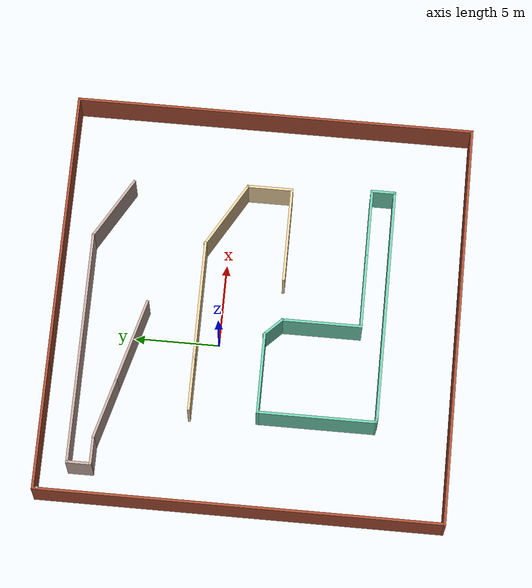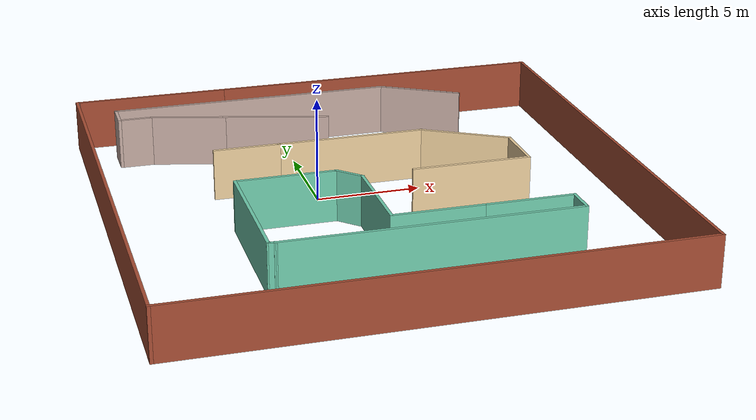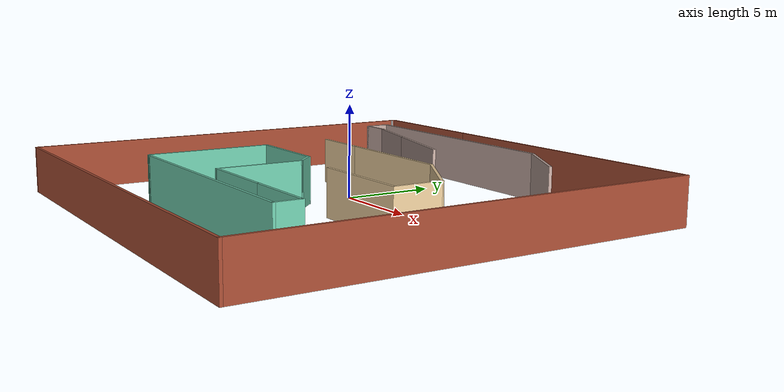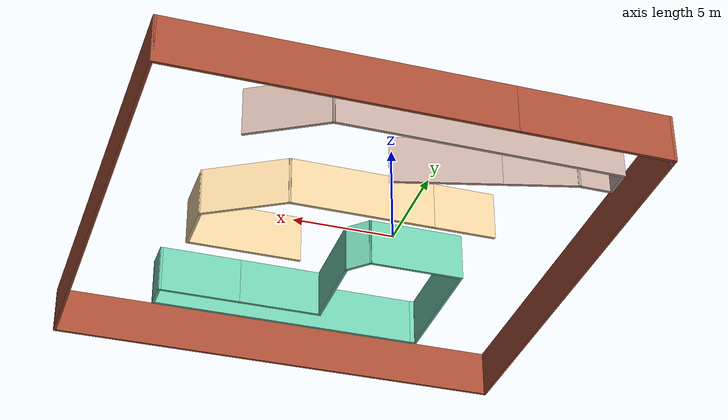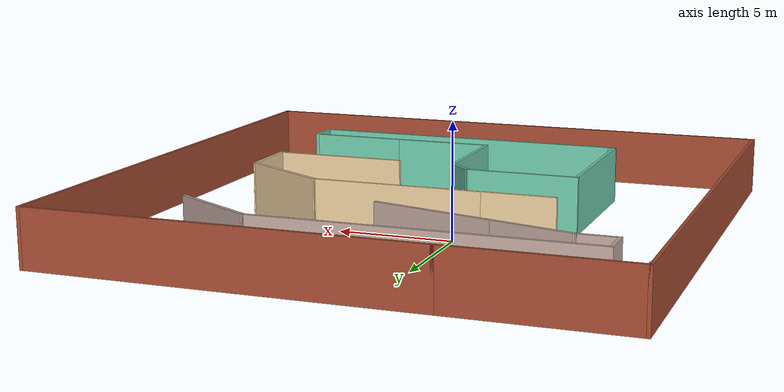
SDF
<?xml version='1.0'?>
<sdf version='1.6'>
  <model name='mst_world_wall'>
    <pose frame=''>1.91645 -2.05889 0 0 -0 0</pose>
    <link name='Wall_15'>
      <collision name='Wall_15_Collision'>
        <geometry>
          <box>
            <size>16.75 0.15 2.5</size>
          </box>
        </geometry>
        <pose frame=''>0 0 1.25 0 -0 0</pose>
      </collision>
      <visual name='Wall_15_Visual'>
        <pose frame=''>0 0 1.25 0 -0 0</pose>
        <geometry>
          <box>
            <size>16.75 0.15 2.5</size>
          </box>
        </geometry>
        <material>
          <script>
            <uri>file://media/materials/scripts/gazebo.material</uri>
            <name>Gazebo/Bricks</name>
          </script>
          <ambient>0.760784 0.662745 0.627451 1</ambient>
        </material>
        <meta>
          <layer>0</layer>
        </meta>
      </visual>
      <pose frame=''>3.75 11.8 0 0 -0 0</pose>
    </link>
    <link name='Wall_16'>
      <collision name='Wall_16_Collision'>
        <geometry>
          <box>
            <size>23.75 0.15 2.5</size>
          </box>
        </geometry>
        <pose frame=''>0 0 1.25 0 -0 0</pose>
      </collision>
      <visual name='Wall_16_Visual'>
        <pose frame=''>0 0 1.25 0 -0 0</pose>
        <geometry>
          <box>
            <size>23.75 0.15 2.5</size>
          </box>
        </geometry>
        <material>
          <script>
            <uri>file://media/materials/scripts/gazebo.material</uri>
            <name>Gazebo/Bricks</name>
          </script>
          <ambient>0.435294 0.796078 0.67451 1</ambient>
        </material>
        <meta>
          <layer>0</layer>
        </meta>
      </visual>
      <pose frame=''>12.05 -0 0 0 -0 -1.5708</pose>
    </link>
    <link name='Wall_17'>
      <collision name='Wall_17_Collision'>
        <geometry>
          <box>
            <size>24.25 0.15 2.5</size>
          </box>
        </geometry>
        <pose frame=''>0 0 1.25 0 -0 0</pose>
      </collision>
      <visual name='Wall_17_Visual'>
        <pose frame=''>0 0 1.25 0 -0 0</pose>
        <geometry>
          <box>
            <size>24.25 0.15 2.5</size>
          </box>
        </geometry>
        <material>
          <script>
            <uri>file://media/materials/scripts/gazebo.material</uri>
            <name>Gazebo/Bricks</name>
          </script>
          <ambient>0.435294 0.796078 0.67451 1</ambient>
        </material>
        <meta>
          <layer>0</layer>
        </meta>
      </visual>
      <pose frame=''>0 -11.8 0 0 -0 3.14159</pose>
    </link>
    <link name='Wall_21'>
      <collision name='Wall_21_Collision'>
        <geometry>
          <box>
            <size>0.15 0.15 2.5</size>
          </box>
        </geometry>
        <pose frame=''>0 0 1.25 0 -0 0</pose>
      </collision>
      <visual name='Wall_21_Visual'>
        <pose frame=''>0 0 1.25 0 -0 0</pose>
        <geometry>
          <box>
            <size>0.15 0.15 2.5</size>
          </box>
        </geometry>
        <material>
          <script>
            <uri>file://media/materials/scripts/gazebo.material</uri>
            <name>Gazebo/Grey</name>
          </script>
          <ambient>1 1 1 1</ambient>
        </material>
        <meta>
          <layer>0</layer>
        </meta>
      </visual>
      <pose frame=''>-12.0155 11.55 0 0 -0 0</pose>
    </link>
    <link name='Wall_22'>
      <collision name='Wall_22_Collision'>
        <geometry>
          <box>
            <size>0.15 0.15 2.5</size>
          </box>
        </geometry>
        <pose frame=''>0 0 1.25 0 -0 0</pose>
      </collision>
      <visual name='Wall_22_Visual'>
        <pose frame=''>0 0 1.25 0 -0 0</pose>
        <geometry>
          <box>
            <size>0.15 0.15 2.5</size>
          </box>
        </geometry>
        <material>
          <script>
            <uri>file://media/materials/scripts/gazebo.material</uri>
            <name>Gazebo/Bricks</name>
          </script>
          <ambient>1 1 1 1</ambient>
        </material>
        <meta>
          <layer>0</layer>
        </meta>
      </visual>
      <pose frame=''>-12.0155 11.55 0 0 -0 0</pose>
    </link>
    <link name='Wall_28'>
      <collision name='Wall_28_Collision'>
        <geometry>
          <box>
            <size>23.75 0.15 2.5</size>
          </box>
        </geometry>
        <pose frame=''>0 0 1.25 0 -0 0</pose>
      </collision>
      <visual name='Wall_28_Visual'>
        <pose frame=''>0 0 1.25 0 -0 0</pose>
        <geometry>
          <box>
            <size>23.75 0.15 2.5</size>
          </box>
        </geometry>
        <material>
          <script>
            <uri>file://media/materials/scripts/gazebo.material</uri>
            <name>Gazebo/Bricks</name>
          </script>
          <ambient>1 1 1 1</ambient>
        </material>
        <meta>
          <layer>0</layer>
        </meta>
      </visual>
      <pose frame=''>-12.05 -0 0 0 -0 1.5708</pose>
    </link>
    <link name='Wall_29'>
      <collision name='Wall_29_Collision'>
        <geometry>
          <box>
            <size>7.65 0.15 2.5</size>
          </box>
        </geometry>
        <pose frame=''>0 0 1.25 0 -0 0</pose>
      </collision>
      <visual name='Wall_29_Visual'>
        <pose frame=''>0 0 1.25 0 -0 0</pose>
        <geometry>
          <box>
            <size>7.65 0.15 2.5</size>
          </box>
        </geometry>
        <material>
          <script>
            <uri>file://media/materials/scripts/gazebo.material</uri>
            <name>Gazebo/Bricks</name>
          </script>
          <ambient>1 1 1 1</ambient>
        </material>
        <meta>
          <layer>0</layer>
        </meta>
      </visual>
      <pose frame=''>-8.3 11.8 0 0 -0 0</pose>
    </link>
    <link name='Wall_31'>
      <collision name='Wall_31_Collision'>
        <geometry>
          <box>
            <size>4.89506 0.15 2.5</size>
          </box>
        </geometry>
        <pose frame=''>0 0 1.25 0 -0 0</pose>
      </collision>
      <visual name='Wall_31_Visual'>
        <pose frame=''>0 0 1.25 0 -0 0</pose>
        <geometry>
          <box>
            <size>4.89506 0.15 2.5</size>
          </box>
        </geometry>
        <material>
          <script>
            <uri>file://media/materials/scripts/gazebo.material</uri>
            <name>Gazebo/Grey</name>
          </script>
          <ambient>0.435294 0.796078 0.67451 1</ambient>
        </material>
        <meta>
          <layer>0</layer>
        </meta>
      </visual>
      <pose frame=''>-4.04016 -0.586586 0 0 -0 3.14159</pose>
    </link>
    <link name='Wall_34'>
      <collision name='Wall_34_Collision'>
        <geometry>
          <box>
            <size>1.5 0.15 2.5</size>
          </box>
        </geometry>
        <pose frame=''>0 0 1.25 0 -0 0</pose>
      </collision>
      <visual name='Wall_34_Visual'>
        <pose frame=''>0 0 1.25 0 -0 0</pose>
        <geometry>
          <box>
            <size>1.5 0.15 2.5</size>
          </box>
        </geometry>
        <material>
          <script>
            <uri>file://media/materials/scripts/gazebo.material</uri>
            <name>Gazebo/Grey</name>
          </script>
          <ambient>0.435294 0.796078 0.67451 1</ambient>
        </material>
        <meta>
          <layer>0</layer>
        </meta>
      </visual>
      <pose frame=''>-1.19033 -1.06388 0 0 -0 -0.785398</pose>
    </link>
    <link name='Wall_35'>
      <collision name='Wall_35_Collision'>
        <geometry>
          <box>
            <size>4.75 0.15 2.5</size>
          </box>
        </geometry>
        <pose frame=''>0 0 1.25 0 -0 0</pose>
      </collision>
      <visual name='Wall_35_Visual'>
        <pose frame=''>0 0 1.25 0 -0 0</pose>
        <geometry>
          <box>
            <size>4.75 0.15 2.5</size>
          </box>
        </geometry>
        <material>
          <script>
            <uri>file://media/materials/scripts/gazebo.material</uri>
            <name>Gazebo/Grey</name>
          </script>
          <ambient>0.435294 0.796078 0.67451 1</ambient>
        </material>
        <meta>
          <layer>0</layer>
        </meta>
      </visual>
      <pose frame=''>-0.713038 -3.84118 0 0 -0 -1.5708</pose>
    </link>
    <link name='Wall_36'>
      <collision name='Wall_36_Collision'>
        <geometry>
          <box>
            <size>4.5 0.15 2.5</size>
          </box>
        </geometry>
        <pose frame=''>0 0 1.25 0 -0 0</pose>
      </collision>
      <visual name='Wall_36_Visual'>
        <pose frame=''>0 0 1.25 0 -0 0</pose>
        <geometry>
          <box>
            <size>4.5 0.15 2.5</size>
          </box>
        </geometry>
        <material>
          <script>
            <uri>file://media/materials/scripts/gazebo.material</uri>
            <name>Gazebo/Grey</name>
          </script>
          <ambient>0.435294 0.796078 0.67451 1</ambient>
        </material>
        <meta>
          <layer>0</layer>
        </meta>
      </visual>
      <pose frame=''>1.46196 -6.14118 0 0 -0 0</pose>
    </link>
    <link name='Wall_37'>
      <collision name='Wall_37_Collision'>
        <geometry>
          <box>
            <size>4.25 0.15 2.5</size>
          </box>
        </geometry>
        <pose frame=''>0 0 1.25 0 -0 0</pose>
      </collision>
      <visual name='Wall_37_Visual'>
        <pose frame=''>0 0 1.25 0 -0 0</pose>
        <geometry>
          <box>
            <size>4.25 0.15 2.5</size>
          </box>
        </geometry>
        <material>
          <script>
            <uri>file://media/materials/scripts/gazebo.material</uri>
            <name>Gazebo/Grey</name>
          </script>
          <ambient>0.435294 0.796078 0.67451 1</ambient>
        </material>
        <meta>
          <layer>0</layer>
        </meta>
      </visual>
      <pose frame=''>5.68696 -6.14118 0 0 -0 0</pose>
    </link>
    <link name='Wall_40'>
      <collision name='Wall_40_Collision'>
        <geometry>
          <box>
            <size>5.75 0.15 2.5</size>
          </box>
        </geometry>
        <pose frame=''>0 0 1.25 0 -0 0</pose>
      </collision>
      <visual name='Wall_40_Visual'>
        <pose frame=''>0 0 1.25 0 -0 0</pose>
        <geometry>
          <box>
            <size>5.75 0.15 2.5</size>
          </box>
        </geometry>
        <material>
          <script>
            <uri>file://media/materials/scripts/gazebo.material</uri>
            <name>Gazebo/Grey</name>
          </script>
          <ambient>0.921569 0.807843 0.615686 1</ambient>
        </material>
        <meta>
          <layer>0</layer>
        </meta>
      </visual>
      <pose frame=''>4.58949 -1.39467 0 0 -0 0</pose>
    </link>
    <link name='Wall_41'>
      <collision name='Wall_41_Collision'>
        <geometry>
          <box>
            <size>2.75 0.15 2.5</size>
          </box>
        </geometry>
        <pose frame=''>0 0 1.25 0 -0 0</pose>
      </collision>
      <visual name='Wall_41_Visual'>
        <pose frame=''>0 0 1.25 0 -0 0</pose>
        <geometry>
          <box>
            <size>2.75 0.15 2.5</size>
          </box>
        </geometry>
        <material>
          <script>
            <uri>file://media/materials/scripts/gazebo.material</uri>
            <name>Gazebo/Grey</name>
          </script>
          <ambient>0.921569 0.807843 0.615686 1</ambient>
        </material>
        <meta>
          <layer>0</layer>
        </meta>
      </visual>
      <pose frame=''>7.38949 -0.094666 0 0 -0 1.5708</pose>
    </link>
    <link name='Wall_43'>
      <collision name='Wall_43_Collision'>
        <geometry>
          <box>
            <size>1.5 0.15 2.5</size>
          </box>
        </geometry>
        <pose frame=''>0 0 1.25 0 -0 0</pose>
      </collision>
      <visual name='Wall_43_Visual'>
        <pose frame=''>0 0 1.25 0 -0 0</pose>
        <geometry>
          <box>
            <size>1.5 0.15 2.5</size>
          </box>
        </geometry>
        <material>
          <script>
            <uri>file://media/materials/scripts/gazebo.material</uri>
            <name>Gazebo/Grey</name>
          </script>
          <ambient>0.435294 0.796078 0.67451 1</ambient>
        </material>
        <meta>
          <layer>0</layer>
        </meta>
      </visual>
      <pose frame=''>7.73696 -6.81618 0 0 -0 -1.5708</pose>
    </link>
    <link name='Wall_44'>
      <collision name='Wall_44_Collision'>
        <geometry>
          <box>
            <size>14 0.15 2.5</size>
          </box>
        </geometry>
        <pose frame=''>0 0 1.25 0 -0 0</pose>
      </collision>
      <visual name='Wall_44_Visual'>
        <pose frame=''>0 0 1.25 0 -0 0</pose>
        <geometry>
          <box>
            <size>14 0.15 2.5</size>
          </box>
        </geometry>
        <material>
          <script>
            <uri>file://media/materials/scripts/gazebo.material</uri>
            <name>Gazebo/Grey</name>
          </script>
          <ambient>0.435294 0.796078 0.67451 1</ambient>
        </material>
        <meta>
          <layer>0</layer>
        </meta>
      </visual>
      <pose frame=''>0.811962 -7.49118 0 0 -0 3.14159</pose>
    </link>
    <link name='Wall_46'>
      <collision name='Wall_46_Collision'>
        <geometry>
          <box>
            <size>7 0.15 2.5</size>
          </box>
        </geometry>
        <pose frame=''>0 0 1.25 0 -0 0</pose>
      </collision>
      <visual name='Wall_46_Visual'>
        <pose frame=''>0 0 1.25 0 -0 0</pose>
        <geometry>
          <box>
            <size>7 0.15 2.5</size>
          </box>
        </geometry>
        <material>
          <script>
            <uri>file://media/materials/scripts/gazebo.material</uri>
            <name>Gazebo/Grey</name>
          </script>
          <ambient>0.435294 0.796078 0.67451 1</ambient>
        </material>
        <meta>
          <layer>0</layer>
        </meta>
      </visual>
      <pose frame=''>-6.41269 -4.01159 0 0 -0 -1.5708</pose>
    </link>
    <link name='Wall_47'>
      <collision name='Wall_47_Collision'>
        <geometry>
          <box>
            <size>0.15 0.15 2.5</size>
          </box>
        </geometry>
        <pose frame=''>0 0 1.25 0 -0 0</pose>
      </collision>
      <visual name='Wall_47_Visual'>
        <pose frame=''>0 0 1.25 0 -0 0</pose>
        <geometry>
          <box>
            <size>0.15 0.15 2.5</size>
          </box>
        </geometry>
        <material>
          <script>
            <uri>file://media/materials/scripts/gazebo.material</uri>
            <name>Gazebo/Grey</name>
          </script>
          <ambient>0.435294 0.796078 0.67451 1</ambient>
        </material>
        <meta>
          <layer>0</layer>
        </meta>
      </visual>
      <pose frame=''>-6.41269 -7.43659 0 0 -0 0</pose>
    </link>
    <link name='Wall_48'>
      <collision name='Wall_48_Collision'>
        <geometry>
          <box>
            <size>0.454586 0.15 2.5</size>
          </box>
        </geometry>
        <pose frame=''>0 0 1.25 0 -0 0</pose>
      </collision>
      <visual name='Wall_48_Visual'>
        <pose frame=''>0 0 1.25 0 -0 0</pose>
        <geometry>
          <box>
            <size>0.454586 0.15 2.5</size>
          </box>
        </geometry>
        <material>
          <script>
            <uri>file://media/materials/scripts/gazebo.material</uri>
            <name>Gazebo/Grey</name>
          </script>
          <ambient>0.435294 0.796078 0.67451 1</ambient>
        </material>
        <meta>
          <layer>0</layer>
        </meta>
      </visual>
      <pose frame=''>-6.26286 -7.46388 0 0 -0 -0.180214</pose>
    </link>
    <link name='Wall_54'>
      <collision name='Wall_54_Collision'>
        <geometry>
          <box>
            <size>4.5 0.15 2.5</size>
          </box>
        </geometry>
        <pose frame=''>0 0 1.25 0 -0 0</pose>
      </collision>
      <visual name='Wall_54_Visual'>
        <pose frame=''>0 0 1.25 0 -0 0</pose>
        <geometry>
          <box>
            <size>4.5 0.15 2.5</size>
          </box>
        </geometry>
        <material>
          <script>
            <uri>file://media/materials/scripts/gazebo.material</uri>
            <name>Gazebo/Grey</name>
          </script>
          <ambient>0.921569 0.807843 0.615686 1</ambient>
        </material>
        <meta>
          <layer>0</layer>
        </meta>
      </visual>
      <pose frame=''>5.50588 2.29283 0 0 -0 2.61799</pose>
    </link>
    <link name='Wall_55'>
      <collision name='Wall_55_Collision'>
        <geometry>
          <box>
            <size>7.25 0.15 2.5</size>
          </box>
        </geometry>
        <pose frame=''>0 0 1.25 0 -0 0</pose>
      </collision>
      <visual name='Wall_55_Visual'>
        <pose frame=''>0 0 1.25 0 -0 0</pose>
        <geometry>
          <box>
            <size>7.25 0.15 2.5</size>
          </box>
        </geometry>
        <material>
          <script>
            <uri>file://media/materials/scripts/gazebo.material</uri>
            <name>Gazebo/Grey</name>
          </script>
          <ambient>0.921569 0.807843 0.615686 1</ambient>
        </material>
        <meta>
          <layer>0</layer>
        </meta>
      </visual>
      <pose frame=''>0.072276 3.38033 0 0 -0 3.14159</pose>
    </link>
    <link name='Wall_59'>
      <collision name='Wall_59_Collision'>
        <geometry>
          <box>
            <size>5.25 0.15 2.5</size>
          </box>
        </geometry>
        <pose frame=''>0 0 1.25 0 -0 0</pose>
      </collision>
      <visual name='Wall_59_Visual'>
        <pose frame=''>0 0 1.25 0 -0 0</pose>
        <geometry>
          <box>
            <size>5.25 0.15 2.5</size>
          </box>
        </geometry>
        <material>
          <script>
            <uri>file://media/materials/scripts/gazebo.material</uri>
            <name>Gazebo/Grey</name>
          </script>
          <ambient>0.760784 0.662745 0.627451 1</ambient>
        </material>
        <meta>
          <layer>0</layer>
        </meta>
      </visual>
      <pose frame=''>-2.78935 7.07926 0 0 -0 2.87979</pose>
    </link>
    <link name='Wall_60'>
      <collision name='Wall_60_Collision'>
        <geometry>
          <box>
            <size>3.75 0.15 2.5</size>
          </box>
        </geometry>
        <pose frame=''>0 0 1.25 0 -0 0</pose>
      </collision>
      <visual name='Wall_60_Visual'>
        <pose frame=''>0 0 1.25 0 -0 0</pose>
        <geometry>
          <box>
            <size>3.75 0.15 2.5</size>
          </box>
        </geometry>
        <material>
          <script>
            <uri>file://media/materials/scripts/gazebo.material</uri>
            <name>Gazebo/Grey</name>
          </script>
          <ambient>0.760784 0.662745 0.627451 1</ambient>
        </material>
        <meta>
          <layer>0</layer>
        </meta>
      </visual>
      <pose frame=''>-6.99112 8.20512 0 0 -0 2.87979</pose>
    </link>
    <link name='Wall_62'>
      <collision name='Wall_62_Collision'>
        <geometry>
          <box>
            <size>1.75 0.15 2.5</size>
          </box>
        </geometry>
        <pose frame=''>0 0 1.25 0 -0 0</pose>
      </collision>
      <visual name='Wall_62_Visual'>
        <pose frame=''>0 0 1.25 0 -0 0</pose>
        <geometry>
          <box>
            <size>1.75 0.15 2.5</size>
          </box>
        </geometry>
        <material>
          <script>
            <uri>file://media/materials/scripts/gazebo.material</uri>
            <name>Gazebo/Grey</name>
          </script>
          <ambient>0.760784 0.662745 0.627451 1</ambient>
        </material>
        <meta>
          <layer>0</layer>
        </meta>
      </visual>
      <pose frame=''>-9.52979 8.671 0 0 -0 3.14159</pose>
    </link>
    <link name='Wall_63'>
      <collision name='Wall_63_Collision'>
        <geometry>
          <box>
            <size>1.5 0.15 2.5</size>
          </box>
        </geometry>
        <pose frame=''>0 0 1.25 0 -0 0</pose>
      </collision>
      <visual name='Wall_63_Visual'>
        <pose frame=''>0 0 1.25 0 -0 0</pose>
        <geometry>
          <box>
            <size>1.5 0.15 2.5</size>
          </box>
        </geometry>
        <material>
          <script>
            <uri>file://media/materials/scripts/gazebo.material</uri>
            <name>Gazebo/Grey</name>
          </script>
          <ambient>0.760784 0.662745 0.627451 1</ambient>
        </material>
        <meta>
          <layer>0</layer>
        </meta>
      </visual>
      <pose frame=''>-10.3298 9.346 0 0 -0 1.5708</pose>
    </link>
    <link name='Wall_64'>
      <collision name='Wall_64_Collision'>
        <geometry>
          <box>
            <size>14 0.15 2.5</size>
          </box>
        </geometry>
        <pose frame=''>0 0 1.25 0 -0 0</pose>
      </collision>
      <visual name='Wall_64_Visual'>
        <pose frame=''>0 0 1.25 0 -0 0</pose>
        <geometry>
          <box>
            <size>14 0.15 2.5</size>
          </box>
        </geometry>
        <material>
          <script>
            <uri>file://media/materials/scripts/gazebo.material</uri>
            <name>Gazebo/Grey</name>
          </script>
          <ambient>0.760784 0.662745 0.627451 1</ambient>
        </material>
        <meta>
          <layer>0</layer>
        </meta>
      </visual>
      <pose frame=''>-3.40479 10.021 0 0 -0 0</pose>
    </link>
    <link name='Wall_65'>
      <collision name='Wall_65_Collision'>
        <geometry>
          <box>
            <size>4.25 0.15 2.5</size>
          </box>
        </geometry>
        <pose frame=''>0 0 1.25 0 -0 0</pose>
      </collision>
      <visual name='Wall_65_Visual'>
        <pose frame=''>0 0 1.25 0 -0 0</pose>
        <geometry>
          <box>
            <size>4.25 0.15 2.5</size>
          </box>
        </geometry>
        <material>
          <script>
            <uri>file://media/materials/scripts/gazebo.material</uri>
            <name>Gazebo/Grey</name>
          </script>
          <ambient>0.760784 0.662745 0.627451 1</ambient>
        </material>
        <meta>
          <layer>0</layer>
        </meta>
      </visual>
      <pose frame=''>5.29556 8.996 0 0 -0 -0.523599</pose>
    </link>
    <link name='Wall_67'>
      <collision name='Wall_67_Collision'>
        <geometry>
          <box>
            <size>3.25 0.15 2.5</size>
          </box>
        </geometry>
        <pose frame=''>0 0 1.25 0 -0 0</pose>
      </collision>
      <visual name='Wall_67_Visual'>
        <pose frame=''>0 0 1.25 0 -0 0</pose>
        <geometry>
          <box>
            <size>3.25 0.15 2.5</size>
          </box>
        </geometry>
        <material>
          <script>
            <uri>file://media/materials/scripts/gazebo.material</uri>
            <name>Gazebo/Grey</name>
          </script>
          <ambient>0.921569 0.807843 0.615686 1</ambient>
        </material>
        <meta>
          <layer>0</layer>
        </meta>
      </visual>
      <pose frame=''>-5.02772 3.38033 0 0 -0 3.14159</pose>
    </link>
    <static>1</static>
  </model>
</sdf>
